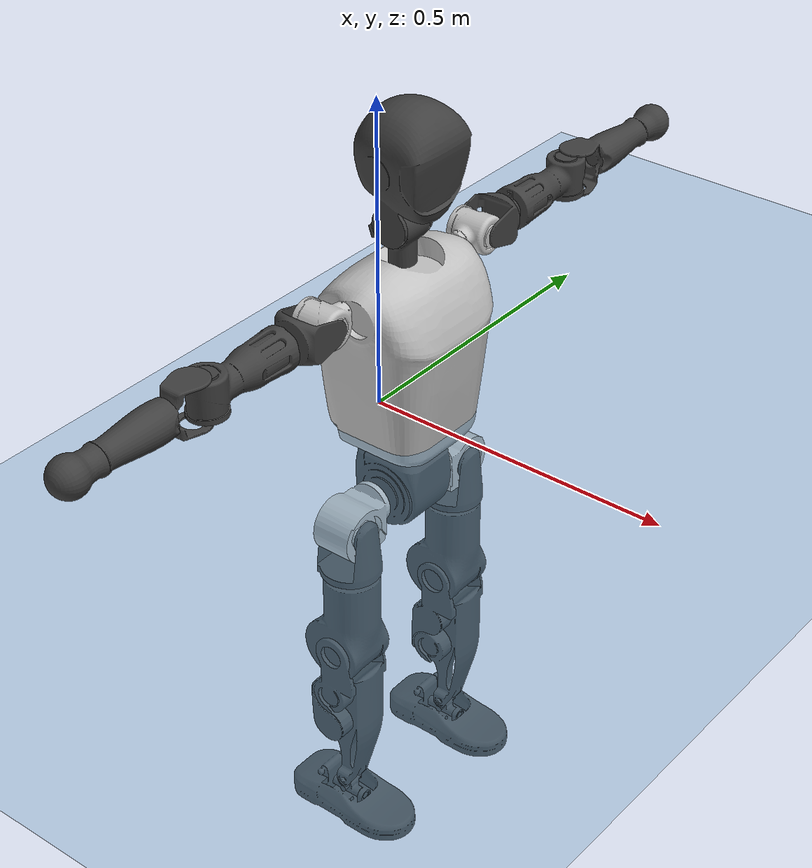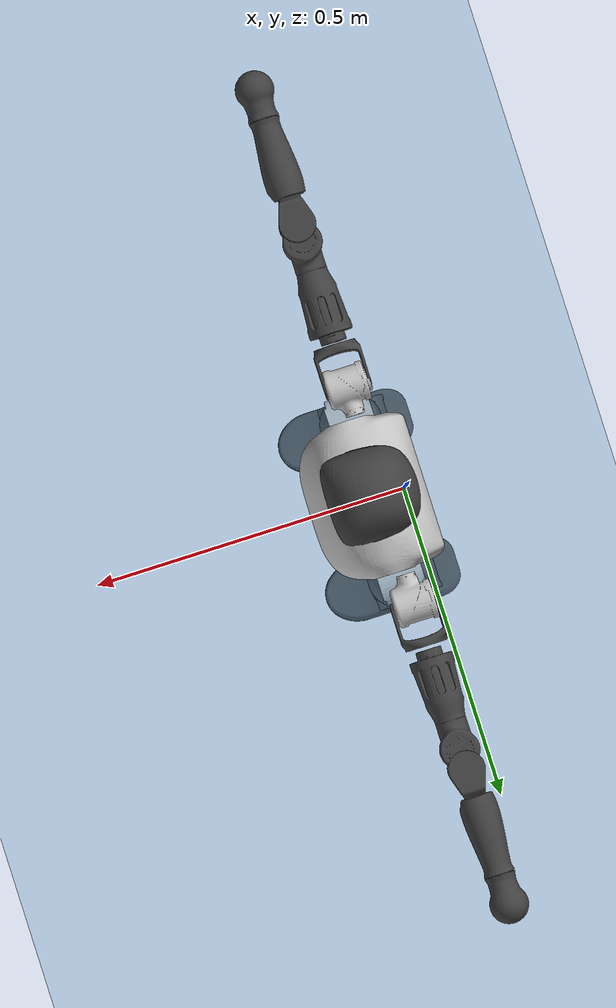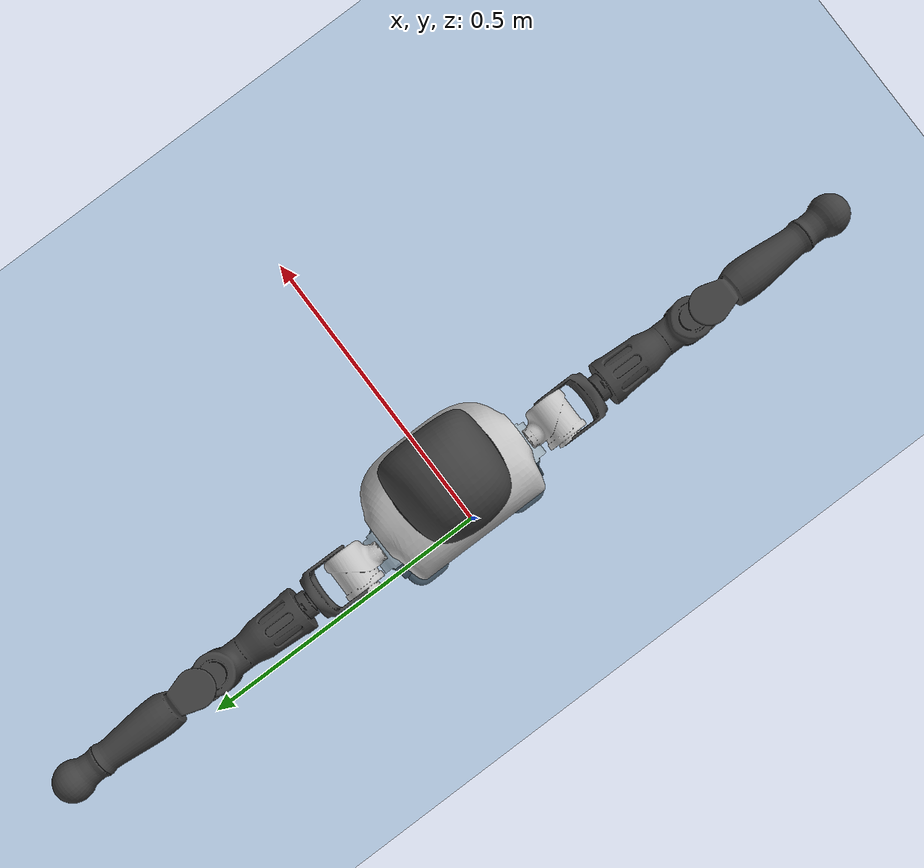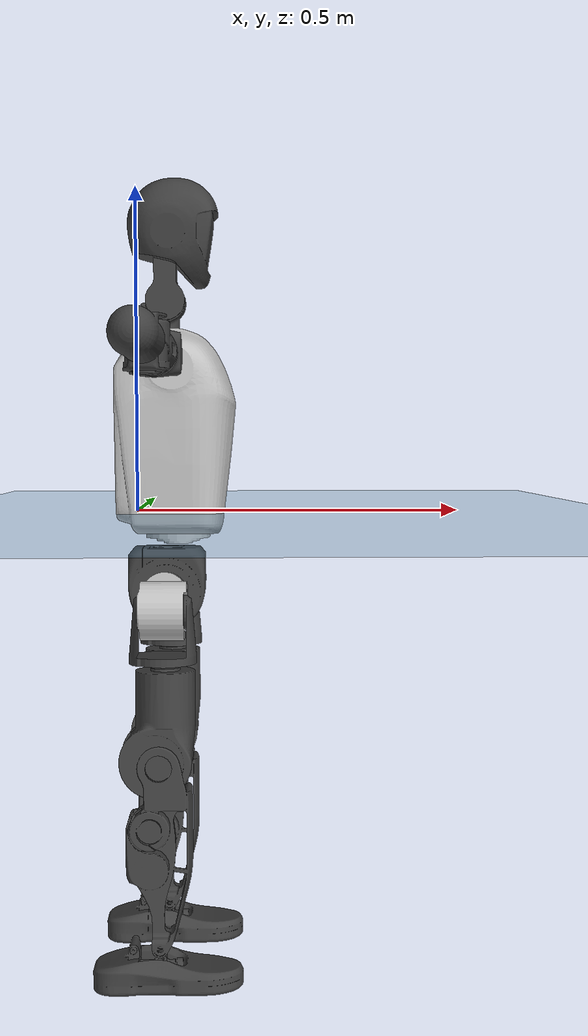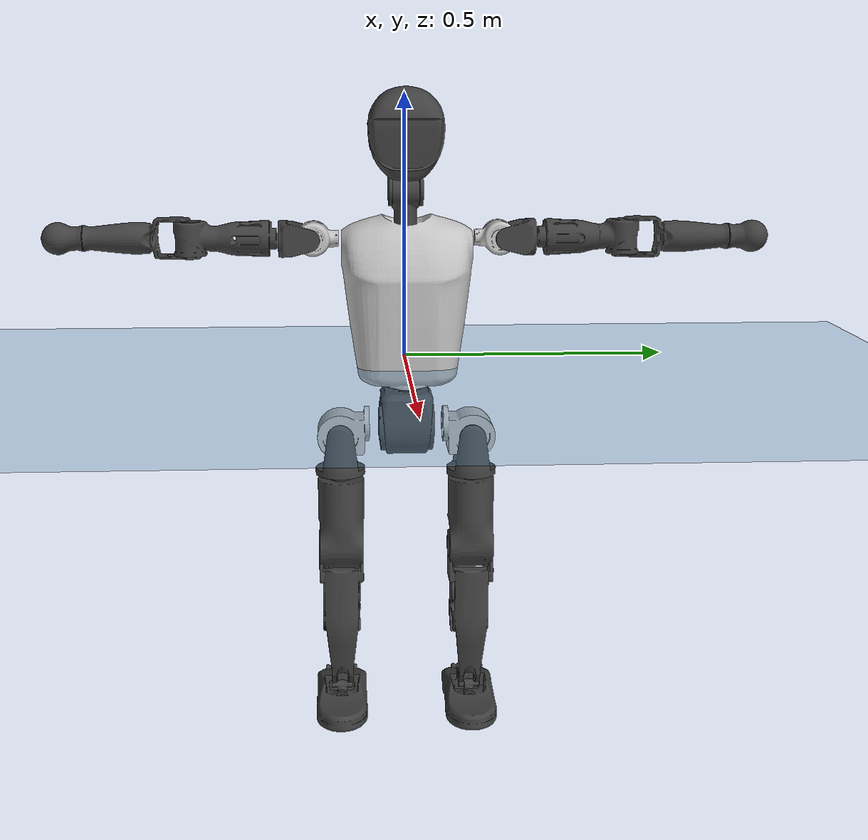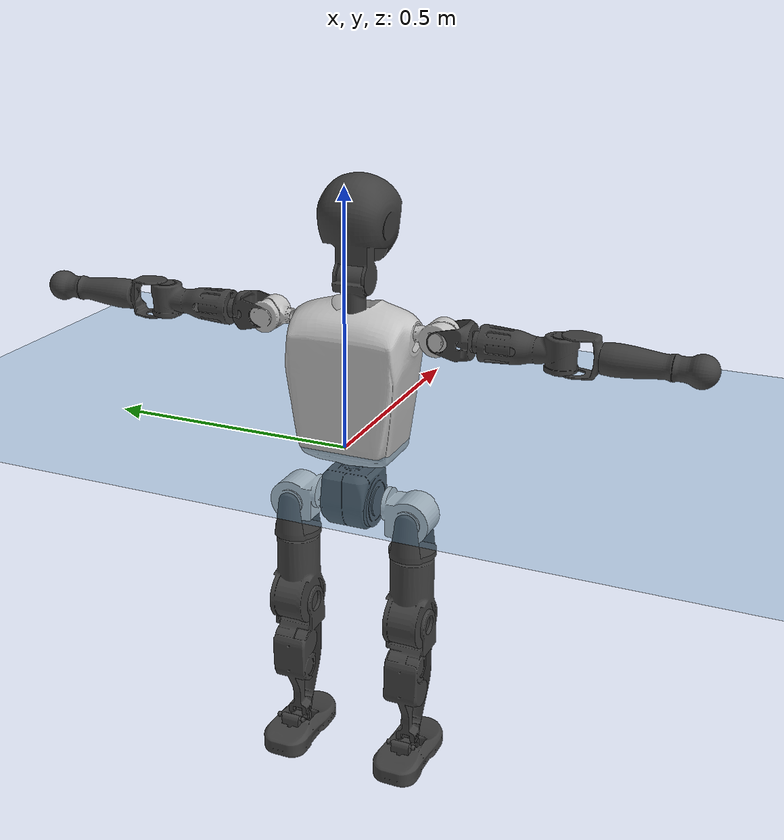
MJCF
<mujoco model="T1">
  <compiler angle="radian" assetdir="assets" balanceinertia="true" inertiafromgeom="false"/>

  <option timestep="0.005" density="1.2" viscosity="2e-05"/>

  <size nkey="1"/>

  <visual>
    <quality shadowsize="8192"/>
    <map shadowclip="0.5"/>
  </visual>

  <default>
    <default class="/">
      <joint armature="0.01" damping="0.01" frictionloss="0.1"/>
      <geom contype="0" conaffinity="0" group="1" solref="-1000 -80"/>
      <site size="0.01 0.005 0.005" group="5"/>
      <general forcelimited="true" biastype="affine" gainprm="25" biasprm="0 -25 -0.6"/>
      <default class="t1">
        <geom rgba="0.25 0.25 0.25 1"/>
        <default class="visual">
          <geom type="mesh" group="2"/>
        </default>
        <default class="collision">
          <geom group="3"/>
        </default>
        <default class="foot">
          <geom size="0.1115 0.05 0.015" type="box" condim="6" group="4" priority="1" solimp="0.015 1 0.015"/>
        </default>
        <default class="reward_collision_sphere">
          <geom group="5" rgba="1 0 0 1"/>
        </default>
      </default>
    </default>
  </default>

  <asset>
    <texture type="skybox" colorspace="auto" name="//unnamed_texture_0" builtin="gradient" rgb1="0.95 0.95 0.95" rgb2="0.95 0.95 0.95" width="100" height="600"/>
    <texture type="2d" colorspace="auto" name="texplane" builtin="checker" rgb1="0.345 0.575 0.748" rgb2="0.345 0.575 0.748" markrgb="1 1 1" width="512" height="512"/>
    <material name="MatPlane" class="/" texture="texplane" texuniform="true" texrepeat="2 2" specular="0.9"/>
    <mesh name="Trunk" class="/" file="Trunk.stl"/>
    <mesh name="H1" class="/" file="H1.stl"/>
    <mesh name="H2" class="/" file="H2.stl"/>
    <mesh name="AL1" class="/" file="AL1.stl"/>
    <mesh name="AL2" class="/" file="AL2.stl"/>
    <mesh name="AL3" class="/" file="AL3.stl"/>
    <mesh name="left_hand_link" class="/" file="left_hand_link.stl"/>
    <mesh name="AR1" class="/" file="AR1.stl"/>
    <mesh name="AR2" class="/" file="AR2.stl"/>
    <mesh name="AR3" class="/" file="AR3.stl"/>
    <mesh name="right_hand_link" class="/" file="right_hand_link.stl"/>
    <mesh name="Waist" class="/" file="Waist.stl"/>
    <mesh name="Hip_Pitch_Left" class="/" file="Hip_Pitch_Left.stl"/>
    <mesh name="Hip_Roll_Left" class="/" file="Hip_Roll_Left.stl"/>
    <mesh name="Hip_Yaw_Left" class="/" file="Hip_Yaw_Left.stl"/>
    <mesh name="Shank_Left" class="/" file="Shank_Left.stl"/>
    <mesh name="Ankle_Cross_Left" class="/" file="Ankle_Cross_Left.stl"/>
    <mesh name="left_foot_link" class="/" file="left_foot_link.stl"/>
    <mesh name="Hip_Pitch_Right" class="/" file="Hip_Pitch_Right.stl"/>
    <mesh name="Hip_Roll_Right" class="/" file="Hip_Roll_Right.stl"/>
    <mesh name="Hip_Yaw_Right" class="/" file="Hip_Yaw_Right.stl"/>
    <mesh name="Shank_Right" class="/" file="Shank_Right.stl"/>
    <mesh name="Ankle_Cross_Right" class="/" file="Ankle_Cross_Right.stl"/>
    <mesh name="right_foot_link" class="/" file="right_foot_link.stl"/>
  </asset>

  <worldbody>
    <geom name="floor" class="/" size="100 100 0.125" type="plane" group="0" material="MatPlane"/>
    <light name="toplight_shadow" class="/" pos="0 0 5" dir="0.0990148 0.0990148 -0.990148" type="directional" ambient="0.04 0.04 0.04" diffuse="0.55 0.55 0.55" specular="0.12 0.12 0.12"/>
    <light name="toplight_fill" class="/" pos="0 0 5" dir="0.0990148 0.0990148 -0.990148" type="directional" castshadow="false" ambient="0.04 0.04 0.04" diffuse="0.3 0.3 0.3" specular="0.08 0.08 0.08"/>
    <body name="trunk" childclass="t1" pos="0.000115114 0.000949037 0.000841894" quat="1 6.78778e-05 0.00014732 2.82748e-05">
      <inertial pos="0.038902 0.00147174 0.112821" quat="0.999964 0.000612935 -0.00839494 0.000814149" mass="11.596" diaginertia="0.0186064 0.189742 0.0759023"/>
      <joint name="//unnamed_joint_0" type="free" armature="0" damping="0" frictionloss="0"/>
      <geom name="//unnamed_geom_1" class="visual" rgba="0.76 0.76 0.76 1" mesh="Trunk"/>
      <geom name="//unnamed_geom_2" class="collision" size="0.0745281 0.0993708 0.149056" pos="0.043504 0 0.12725" type="box"/>
      <geom name="//unnamed_geom_3" class="reward_collision_sphere" size="0.114276" pos="0.043504 0 0.106042"/>
      <geom name="//unnamed_geom_4" class="reward_collision_sphere" size="0.0149056" pos="0.043504 0.101629 0"/>
      <geom name="//unnamed_geom_5" class="reward_collision_sphere" size="0.0149056" pos="0.043504 -0.101629 0"/>
      <geom name="//unnamed_geom_6" class="reward_collision_sphere" size="0.0149056" pos="0.043504 0.127933 0.190876"/>
      <geom name="//unnamed_geom_7" class="reward_collision_sphere" size="0.0149056" pos="0.043504 -0.127933 0.190876"/>
      <site name="imu" pos="0.00332726 0.00471749 -0.00210113" size="0.00993708"/>
      <camera name="track" pos="0 -2.39127 0" quat="0.707107 0.707107 0 0" mode="trackcom"/>
      <camera name="ego_camera" pos="0.0884581 0 0.445376" quat="-0.5 -0.5 0.5 0.5"/>
      <body name="H1" pos="0.0457359 -0.00136203 0.258271" quat="1 5.723e-05 -1.76164e-05 9.69375e-06">
        <inertial pos="-0.00101927 0.000191701 0.0606061" quat="0.763782 -0.0189189 0.0028966 0.64519" mass="0.433365" diaginertia="4.75898e-05 0.000541262 0.000202876"/>
        <joint name="AAHead_yaw" pos="0 0 0" axis="-0.0035518 -0.00341069 0.999988" stiffness="0.00291798" range="-1.56906 1.54181" armature="0.0099215" damping="0.0121452" frictionloss="0.088603"/>
        <geom name="//unnamed_geom_8" class="visual" mesh="H1"/>
        <body name="H2" pos="-0.000474218 0.000805346 0.064458" quat="1 -2.52498e-07 -8.74791e-06 -3.56304e-06">
          <inertial pos="0.00616488 -0.000371964 0.105388" quat="0.9873 0.109861 -0.077876 -0.0842864" mass="0.617228" diaginertia="0.000407724 0.00468849 0.00231534"/>
          <joint name="Head_pitch" pos="0 0 0" axis="-0.00015465 -1 -0.000572346" range="-1.2213 0.350239" armature="0.00985152" damping="0.00925258" frictionloss="0.100762"/>
          <geom name="//unnamed_geom_9" class="visual" mesh="H2"/>
          <geom name="//unnamed_geom_10" class="collision" size="0.0794966" pos="0.00725067 0 0.116646"/>
          <geom name="//unnamed_geom_11" class="reward_collision_sphere" size="0.0894337" pos="0.0145013 0 0.106042"/>
        </body>
      </body>
      <body name="AL1" pos="0.0428499 0.128027 0.233243" quat="1 -9.52265e-05 -0.000354047 -0.000211362">
        <inertial pos="-0.000570978 0.0545684 0.000990034" quat="0.501216 0.490793 -0.508309 0.499526" mass="0.522684" diaginertia="0.000271559 0.00322808 0.000395067"/>
        <joint name="Left_Shoulder_Pitch" pos="0 0 0" axis="0.00128414 0.999998 -0.00127197" range="-3.31319 1.23894" armature="0.0100261" damping="0.0149596" frictionloss="0.0990256"/>
        <geom name="//unnamed_geom_12" class="visual" rgba="0.76 0.76 0.76 1" mesh="AL1"/>
        <body name="AL2" pos="0.000972001 0.0581045 0.00039972" quat="1 1.48904e-05 0.00023781 3.43345e-06">
          <inertial pos="0.00430348 0.047163 -0.000870548" quat="0.495286 0.514028 -0.484685 0.505517" mass="0.155661" diaginertia="8.03269e-05 0.000846619 0.000241922"/>
          <joint name="Left_Shoulder_Roll" pos="0 0 0" axis="-0.999999 0.000530389 0.00141648" range="-1.57084 1.73889" armature="0.00962149" damping="0.00552218" frictionloss="0.0993208"/>
          <geom name="//unnamed_geom_13" class="visual" mesh="AL2"/>
          <body name="AL3" pos="0.000602269 0.0749268 -6.80614e-05" quat="1 -0.000162561 0.000112466 -2.42593e-06">
            <inertial pos="-0.0018679 0.102181 0.000378551" quat="0.705698 0.708513 -0.000465204 -0.000145509" mass="1.01421" diaginertia="0.00262183 0.0316461 0.000834569"/>
            <joint name="Left_Elbow_Pitch" pos="0 0 0" axis="0.00210255 -0.99999 -0.00390385" range="-2.26584 2.29899" armature="0.00985782" damping="0.011371" frictionloss="0.101011"/>
            <geom name="//unnamed_geom_14" class="visual" mesh="AL3"/>
            <geom name="//unnamed_geom_15" class="collision" size="0.0298112 0.0745281" pos="0 0.0597818 0" quat="0.707105 0.707108 0 0" type="cylinder"/>
            <geom name="//unnamed_geom_16" class="reward_collision_sphere" size="0.0357735"/>
            <body name="left_hand_link" pos="-0.000567668 0.177893 -0.000882699" quat="1 -0.000212613 1.15704e-06 -9.54347e-05">
              <inertial pos="0.000206657 0.130553 0.00087663" quat="0.706914 0.707293 0.000427587 -0.00293933" mass="0.32256" diaginertia="0.00161989 0.0199425 0.000286492"/>
              <joint name="Left_Elbow_Yaw" pos="0 0 0" axis="0.00439664 -0.00483264 0.999979" stiffness="0.00332187" range="-2.47507 -0.000513521" armature="0.00993672" damping="0.00121605" frictionloss="0.102101"/>
              <geom name="//unnamed_geom_17" class="visual" mesh="left_hand_link"/>
              <geom name="//unnamed_geom_18" class="collision" size="0.0298112 0.0869494" pos="0 0.155433 0" quat="0.707105 0.707108 0 0" type="cylinder"/>
              <geom name="//unnamed_geom_19" class="reward_collision_sphere" size="0.0496854"/>
              <geom name="//unnamed_geom_20" class="reward_collision_sphere" size="0.0347798" pos="0 0.13152 0"/>
              <geom name="//unnamed_geom_21" class="reward_collision_sphere" size="0.0347798" pos="0 0.257062 0"/>
            </body>
          </body>
        </body>
      </body>
      <body name="AR1" pos="0.0410628 -0.12657 0.23222" quat="1 -1.94341e-05 0.000496405 -0.000118677">
        <inertial pos="-0.000526706 -0.0539743 -0.00168798" quat="0.502268 0.493557 -0.501551 0.502568" mass="0.51985" diaginertia="0.000270136 0.00308404 0.000387431"/>
        <joint name="Right_Shoulder_Pitch" pos="0 0 0" axis="-0.00259457 -0.999988 -0.00425373" stiffness="0.00269135" range="-1.22666 3.31602" armature="0.0102673" damping="0" frictionloss="0.0903582"/>
        <geom name="//unnamed_geom_22" class="visual" rgba="0.76 0.76 0.76 1" mesh="AR1"/>
        <body name="AR2" pos="-0.00169114 -0.0556295 -0.000403214" quat="1 -7.9603e-05 7.8004e-06 -1.08141e-05">
          <inertial pos="0.00345658 -0.0473937 0.000287027" quat="0.517953 0.484927 -0.507852 0.488525" mass="0.156023" diaginertia="7.88579e-05 0.000839452 0.000233044"/>
          <joint name="Right_Shoulder_Roll" pos="0 0 0" axis="-0.999986 -0.00339963 0.00412606" stiffness="0.00417345" range="-1.73998 1.57585" armature="0.00990447" damping="0" frictionloss="0.0972111"/>
          <geom name="//unnamed_geom_23" class="visual" mesh="AR2"/>
          <body name="AR3" pos="-0.000451415 -0.0728568 0.000774206" quat="1 -0.000273189 0.000186623 -1.2927e-05">
            <inertial pos="-0.00104773 -0.102514 8.458e-05" quat="0.707253 0.706959 0.000815146 0.00101446" mass="0.992425" diaginertia="0.00255767 0.0302928 0.000835529"/>
            <joint name="Right_Elbow_Pitch" pos="0 0 0" axis="-0.00218055 0.999993 0.00296978" range="-2.282 2.25314" armature="0.00999659" damping="0.00868188" frictionloss="0.0999701"/>
            <geom name="//unnamed_geom_24" class="visual" mesh="AR3"/>
            <geom name="//unnamed_geom_25" class="collision" size="0.0298112 0.0745281" pos="0 -0.0597818 0" quat="0.707105 0.707108 0 0" type="cylinder"/>
            <geom name="//unnamed_geom_26" class="reward_collision_sphere" size="0.0357735"/>
            <body name="right_hand_link" pos="-0.000731581 -0.174632 0.00153614" quat="1 -3.72108e-05 -3.62792e-05 -1.80917e-05">
              <inertial pos="-0.000225261 -0.130876 -0.000163911" quat="0.706323 0.70789 0.000320285 -0.000259204" mass="0.320576" diaginertia="0.00162035 0.0196662 0.000289024"/>
              <joint name="Right_Elbow_Yaw" pos="0 0 0" axis="-0.00198489 -0.000789267 0.999998" range="-0.00703715 2.44455" armature="0.00967474" damping="0.00642273" frictionloss="0.107639"/>
              <geom name="//unnamed_geom_27" class="visual" mesh="right_hand_link"/>
              <geom name="//unnamed_geom_28" class="collision" size="0.0298112 0.0869494" pos="0 -0.155433 0" quat="0.707105 0.707108 0 0" type="cylinder"/>
              <geom name="//unnamed_geom_29" class="reward_collision_sphere" size="0.0496854"/>
              <geom name="//unnamed_geom_30" class="reward_collision_sphere" size="0.0347798" pos="0 -0.13152 0"/>
              <geom name="//unnamed_geom_31" class="reward_collision_sphere" size="0.0347798" pos="0 -0.257062 0"/>
            </body>
          </body>
        </body>
      </body>
      <body name="Waist" pos="0.045807 -6.92722e-05 -0.124214" quat="1 0.000158421 -0.000100052 0.000129228">
        <inertial pos="-0.000799252 -0.000619861 0.00790788" quat="0.98359 -0.00126698 -0.180352 0.00480963" mass="2.54326" diaginertia="0.00105699 0.0130519 0.00633569"/>
        <joint name="Waist" pos="0 0 0" axis="0.00537584 -0.00354181 0.999979" range="-1.5566 1.57198" armature="0.00992236" damping="0.0125778" frictionloss="0.0989466"/>
        <geom name="//unnamed_geom_32" class="visual" mesh="Waist"/>
        <body name="Hip_Pitch_Left" pos="0.000172868 0.125689 -0.00182198" quat="1 -1.85484e-05 5.76398e-06 -2.00753e-05">
          <inertial pos="0.000809687 -0.00838547 -0.019468" quat="0.975739 0.218419 0.0150515 -6.8349e-05" mass="1.02236" diaginertia="0.000361365 0.00355679 0.00168405"/>
          <joint name="Left_Hip_Pitch" pos="0 0 0" axis="-0.000327254 0.999996 0.00265688" range="-1.79945 1.6026" armature="0.0108167" damping="0.00895352" frictionloss="0.0948306"/>
          <geom name="//unnamed_geom_33" class="visual" rgba="0.76 0.76 0.76 1" mesh="Hip_Pitch_Left"/>
          <body name="Hip_Roll_Left" pos="0.00147394 0.000425894 -0.0223323" quat="1 0.000215122 -0.000278856 0.000329657">
            <inertial pos="0.00212796 0.000282863 -0.0580143" quat="0.712618 -0.01057 -0.00730714 0.701435" mass="0.365092" diaginertia="0.000342074 0.00362707 0.000683654"/>
            <joint name="Left_Hip_Roll" pos="0 0 0" axis="-0.999996 0.00125399 -0.00263461" range="-1.56763 0.202378" armature="0.0107192" damping="0.0166003" frictionloss="0.102738"/>
            <geom name="//unnamed_geom_34" class="visual" mesh="Hip_Roll_Left"/>
            <geom name="//unnamed_geom_35" class="reward_collision_sphere" size="0.0546539"/>
            <body name="Hip_Yaw_Left" pos="0.000389309 4.27353e-05 -0.0856957" quat="1 -2.14619e-05 -0.000104623 -1.22513e-05">
              <inertial pos="-0.00591006 -0.000996259 -0.0948686" quat="0.69698 -0.0341936 -0.0342253 0.715457" mass="2.15157" diaginertia="0.00515419 0.0607733 0.00347618"/>
              <joint name="Left_Hip_Yaw" pos="0 0 0" axis="-0.000283136 -0.000516989 -1" range="-0.993187 1.03385" armature="0.00986736" damping="0.0110771" frictionloss="0.098322"/>
              <geom name="//unnamed_geom_36" class="visual" mesh="Hip_Yaw_Left"/>
              <geom name="//unnamed_geom_37" class="collision" size="0.0496854 0.0794966" type="cylinder"/>
              <body name="Shank_Left" pos="-0.00781365 -0.000112944 -0.144145" quat="1 0.000115049 4.45612e-05 6.34803e-05">
                <inertial pos="-0.00442726 0.00144823 -0.130731" quat="0.997564 0.00139706 -0.0239228 0.0655184" mass="1.6561" diaginertia="0.00698074 0.0840198 0.0024869"/>
                <joint name="Left_Knee_Pitch" pos="0 0 0" axis="-1.20078e-05 1 -0.000141058" range="-0.0207865 2.36074" armature="0.00991094" damping="0.00949825" frictionloss="0.100356"/>
                <geom name="//unnamed_geom_38" class="visual" mesh="Shank_Left"/>
                <geom name="//unnamed_geom_39" class="collision" size="0.0496854 0.0745281" pos="0 0 -0.12725" type="cylinder"/>
                <geom name="//unnamed_geom_40" class="reward_collision_sphere" size="0.064591"/>
                <body name="Ankle_Cross_Left" pos="-0.00108854 1.04244e-05 -0.296956" quat="1 0.000145015 -3.85065e-05 0.000274507">
                  <inertial pos="-0.0015705 0.000276221 -0.00921522" quat="0.442527 0.552311 0.551208 0.44192" mass="0.0716589" diaginertia="5.83991e-06 6.25315e-05 1.51275e-05"/>
                  <joint name="Left_Ankle_Pitch" pos="0 0 0" axis="0.000605343 0.999999 -0.000877034" stiffness="0.000796368" range="-0.83914 0.353358" armature="0.0103178" damping="0.0155699" frictionloss="0.0959304"/>
                  <geom name="//unnamed_geom_41" class="visual" mesh="Ankle_Cross_Left"/>
                  <body name="left_foot_link" pos="0.00021882 -8.33173e-05 -0.0122806" quat="1 9.94869e-05 0.000476175 -0.000176164">
                    <inertial pos="-0.000526011 0.000281192 -0.0104195" quat="-0.000376824 0.619333 -0.00311406 0.785122" mass="0.664868" diaginertia="0.000524018 0.00570063 0.00296845"/>
                    <joint name="Left_Ankle_Roll" pos="0 0 0" axis="-0.99999 -0.00188521 -0.00404965" range="-0.447669 0.440491" armature="0.00984818" damping="0.0160427" frictionloss="0.0990328"/>
                    <geom name="//unnamed_geom_42" class="visual" mesh="left_foot_link"/>
                    <geom name="left_foot" class="foot" size="0.104557 0.0499043 0.0158537" pos="0.00725067 0 -0.0159063"/>
                    <geom name="//unnamed_geom_44" class="reward_collision_sphere" size="0.0516728" pos="0.00725067 0 -0.0159063"/>
                    <geom name="//unnamed_geom_45" class="reward_collision_sphere" size="0.0298112" pos="0.0688813 -0.0274996 -0.0159063"/>
                    <geom name="//unnamed_geom_46" class="reward_collision_sphere" size="0.0298112" pos="-0.0507547 -0.0274996 -0.0159063"/>
                    <site name="left_foot" class="foot" pos="0.00725067 0 -0.0159063" size="0.00993708"/>
                  </body>
                </body>
              </body>
            </body>
          </body>
        </body>
        <body name="Hip_Pitch_Right" pos="-0.00108733 -0.127318 -0.000501198" quat="1 -0.000180767 0.00030917 0.000217651">
          <inertial pos="-0.000231396 0.00982289 -0.0178031" quat="0.973844 -0.226525 0.0171274 -0.00464124" mass="1.00046" diaginertia="0.000361916 0.00359656 0.00162989"/>
          <joint name="Right_Hip_Pitch" pos="0 0 0" axis="0.00203092 -0.999998 0.000725859" range="-1.57334 1.75897" armature="0.0100125" damping="0.0105105" frictionloss="0.100152"/>
          <geom name="//unnamed_geom_47" class="visual" rgba="0.76 0.76 0.76 1" mesh="Hip_Pitch_Right"/>
          <body name="Hip_Roll_Right" pos="0.00157885 -0.000340829 -0.0214092" quat="1 -3.11988e-05 0.00014992 -0.000256267">
            <inertial pos="0.00105295 -0.00112094 -0.0571629" quat="0.711654 -0.00589178 -0.0125401 0.702393" mass="0.383766" diaginertia="0.000348629 0.00377121 0.000691407"/>
            <joint name="Right_Hip_Roll" pos="0 0 0" axis="-0.999995 -0.0028068 0.00151385" range="-0.159118 1.57937" armature="0.00983146" damping="0.00646781" frictionloss="0.0953372"/>
            <geom name="//unnamed_geom_48" class="visual" mesh="Hip_Roll_Right"/>
            <geom name="//unnamed_geom_49" class="reward_collision_sphere" size="0.0546539"/>
            <body name="Hip_Yaw_Right" pos="0.000928266 0.000450767 -0.0872409" quat="1 8.66091e-05 4.17077e-05 -1.15858e-05">
              <inertial pos="-0.00520707 0.000237423 -0.0963665" quat="0.71236 -0.0337159 -0.0314989 0.700296" mass="2.11637" diaginertia="0.00512838 0.0610303 0.0034795"/>
              <joint name="Right_Hip_Yaw" pos="0 0 0" axis="0.0135792 0.00499155 -0.999895" stiffness="0.00358445" range="-0.993197 1.00085" armature="0.0104783" damping="0" frictionloss="0.0992949"/>
              <geom name="//unnamed_geom_50" class="visual" mesh="Hip_Yaw_Right"/>
              <geom name="//unnamed_geom_51" class="collision" size="0.0496854 0.0794966" type="cylinder"/>
              <body name="Shank_Right" pos="-0.0091748 -0.000677574 -0.140978" quat="1 -6.65294e-05 -1.35589e-05 -0.000330768">
                <inertial pos="-0.00466885 -0.000106548 -0.130668" quat="0.999316 0.00120635 -0.0216835 -0.0299337" mass="1.79985" diaginertia="0.00727747 0.0883636 0.00270798"/>
                <joint name="Right_Knee_Pitch" pos="0 0 0" axis="-0.00429563 -0.99999 0.0007828" range="-2.31072 -0.016627" armature="0.0108872" damping="0.00975698" frictionloss="0.0997805"/>
                <geom name="//unnamed_geom_52" class="visual" mesh="Shank_Right"/>
                <geom name="//unnamed_geom_53" class="collision" size="0.0496854 0.0745281" pos="0 0 -0.12725" type="cylinder"/>
                <geom name="//unnamed_geom_54" class="reward_collision_sphere" size="0.064591"/>
                <body name="Ankle_Cross_Right" pos="0.00052911 -0.000918159 -0.297711" quat="1 -0.000105464 -7.26463e-06 -4.633e-05">
                  <inertial pos="-0.0025444 0.000484767 -0.00849907" quat="0.439049 0.551646 0.553335 0.443557" mass="0.0705321" diaginertia="5.78464e-06 6.22224e-05 1.49254e-05"/>
                  <joint name="Right_Ankle_Pitch" pos="0 0 0" axis="0.00109787 -0.999995 0.00302404" range="-0.370623 0.845356" armature="0.0099631" damping="0.011063" frictionloss="0.0998934"/>
                  <geom name="//unnamed_geom_55" class="visual" mesh="Ankle_Cross_Right"/>
                  <body name="right_foot_link" pos="0.00175288 -0.00111213 -0.0121407" quat="1 -1.2106e-05 5.89239e-06 7.29178e-05">
                    <inertial pos="-0.00197915 8.32031e-05 -0.00973175" quat="0.00109557 0.620857 -0.00010711 0.783923" mass="0.669929" diaginertia="0.000537867 0.00578245 0.00293765"/>
                    <joint name="Right_Ankle_Roll" pos="0 0 0" axis="-0.999999 0.000110816 -0.0015747" stiffness="0.00185557" range="-0.473657 0.440638" armature="0.0102524" damping="0.000254347" frictionloss="0.101692"/>
                    <geom name="//unnamed_geom_56" class="visual" mesh="right_foot_link"/>
                    <geom name="right_foot" class="foot" size="0.0996684 0.0478395 0.0155397" pos="0.00725067 0 -0.0159063"/>
                    <geom name="//unnamed_geom_58" class="reward_collision_sphere" size="0.0397483"/>
                    <geom name="//unnamed_geom_59" class="reward_collision_sphere" size="0.0298112" pos="0.00725067 0 -0.0159063"/>
                    <geom name="//unnamed_geom_60" class="reward_collision_sphere" size="0.0298112" pos="0.0688813 0.0274996 -0.0159063"/>
                    <geom name="//unnamed_geom_61" class="reward_collision_sphere" size="0.0298112" pos="-0.0507547 0.0274996 -0.0159063"/>
                    <site name="right_foot" class="foot" pos="0.00725067 0 -0.0159063" size="0.00993708"/>
                  </body>
                </body>
              </body>
            </body>
          </body>
        </body>
      </body>
    </body>
  </worldbody>

  <contact>
    <pair class="/" geom1="floor" geom2="left_foot" name="//unnamed_contact_0"/>
    <pair class="/" geom1="floor" geom2="right_foot" name="//unnamed_contact_1"/>
  </contact>

  <actuator>
    <general name="AAHead_yaw" class="/" joint="AAHead_yaw" forcerange="-6.79948 6.79948" gainprm="24.7636" biasprm="0 -24.7636 -0.577741"/>
    <general name="Head_pitch" class="/" joint="Head_pitch" forcerange="-6.9781 6.9781" gainprm="24.7636" biasprm="0 -24.7636 -0.577741"/>
    <general name="Left_Shoulder_Pitch" class="/" joint="Left_Shoulder_Pitch" forcerange="-18.1954 18.1954" gainprm="24.7636" biasprm="0 -24.7636 -0.577741"/>
    <general name="Left_Shoulder_Roll" class="/" joint="Left_Shoulder_Roll" forcerange="-18.2993 18.2993" gainprm="24.7636" biasprm="0 -24.7636 -0.577741"/>
    <general name="Left_Elbow_Pitch" class="/" joint="Left_Elbow_Pitch" forcerange="-17.8489 17.8489" gainprm="24.7636" biasprm="0 -24.7636 -0.577741"/>
    <general name="Left_Elbow_Yaw" class="/" joint="Left_Elbow_Yaw" forcerange="-18.5726 18.5726" gainprm="24.7636" biasprm="0 -24.7636 -0.577741"/>
    <general name="Right_Shoulder_Pitch" class="/" joint="Right_Shoulder_Pitch" forcerange="-17.3678 17.3678" gainprm="24.7636" biasprm="0 -24.7636 -0.577741"/>
    <general name="Right_Shoulder_Roll" class="/" joint="Right_Shoulder_Roll" forcerange="-18.3934 18.3934" gainprm="24.7636" biasprm="0 -24.7636 -0.577741"/>
    <general name="Right_Elbow_Pitch" class="/" joint="Right_Elbow_Pitch" forcerange="-18.9863 18.9863" gainprm="24.7636" biasprm="0 -24.7636 -0.577741"/>
    <general name="Right_Elbow_Yaw" class="/" joint="Right_Elbow_Yaw" forcerange="-17.1871 17.1871" gainprm="24.7636" biasprm="0 -24.7636 -0.577741"/>
    <general name="Waist" class="/" joint="Waist" forcerange="-28.7221 28.7221" gainprm="24.7636" biasprm="0 -24.7636 -0.577741"/>
    <general name="Left_Hip_Pitch" class="/" joint="Left_Hip_Pitch" forcerange="-44.1201 44.1201" gainprm="24.7636" biasprm="0 -24.7636 -0.577741"/>
    <general name="Left_Hip_Roll" class="/" joint="Left_Hip_Roll" forcerange="-30.2623 30.2623" gainprm="24.7636" biasprm="0 -24.7636 -0.577741"/>
    <general name="Left_Hip_Yaw" class="/" joint="Left_Hip_Yaw" forcerange="-29.0239 29.0239" gainprm="24.7636" biasprm="0 -24.7636 -0.577741"/>
    <general name="Left_Knee_Pitch" class="/" joint="Left_Knee_Pitch" forcerange="-60.351 60.351" gainprm="24.7636" biasprm="0 -24.7636 -0.577741"/>
    <general name="Left_Ankle_Pitch" class="/" joint="Left_Ankle_Pitch" forcerange="-19.9332 19.9332" gainprm="24.7636" biasprm="0 -24.7636 -0.577741"/>
    <general name="Left_Ankle_Roll" class="/" joint="Left_Ankle_Roll" forcerange="-15.5599 15.5599" gainprm="24.7636" biasprm="0 -24.7636 -0.577741"/>
    <general name="Right_Hip_Pitch" class="/" joint="Right_Hip_Pitch" forcerange="-44.7522 44.7522" gainprm="24.7636" biasprm="0 -24.7636 -0.577741"/>
    <general name="Right_Hip_Roll" class="/" joint="Right_Hip_Roll" forcerange="-29.5259 29.5259" gainprm="24.7636" biasprm="0 -24.7636 -0.577741"/>
    <general name="Right_Hip_Yaw" class="/" joint="Right_Hip_Yaw" forcerange="-31.8532 31.8532" gainprm="24.7636" biasprm="0 -24.7636 -0.577741"/>
    <general name="Right_Knee_Pitch" class="/" joint="Right_Knee_Pitch" forcerange="-59.4837 59.4837" gainprm="24.7636" biasprm="0 -24.7636 -0.577741"/>
    <general name="Right_Ankle_Pitch" class="/" joint="Right_Ankle_Pitch" forcerange="-19.8275 19.8275" gainprm="24.7636" biasprm="0 -24.7636 -0.577741"/>
    <general name="Right_Ankle_Roll" class="/" joint="Right_Ankle_Roll" forcerange="-15.2244 15.2244" gainprm="24.7636" biasprm="0 -24.7636 -0.577741"/>
  </actuator>

  <sensor>
    <gyro site="imu" name="imu_angular_velocity"/>
    <velocimeter site="imu" name="imu_linear_velocity"/>
    <framelinvel objtype="site" objname="left_foot" name="left_foot_global_linear_velocity"/>
    <framelinvel objtype="site" objname="right_foot" name="right_foot_global_linear_velocity"/>
  </sensor>

  <keyframe>
    <key name="home" qpos="0 0 0.6385 1 0 0 0 0 0 0 1.4 0 -0.4 0 -1.4 0 0.4 0 -0.4 0 0 0.8 -0.4 0 0.4 0 0 -0.8 0.4 0"/>
  </keyframe>
</mujoco>
